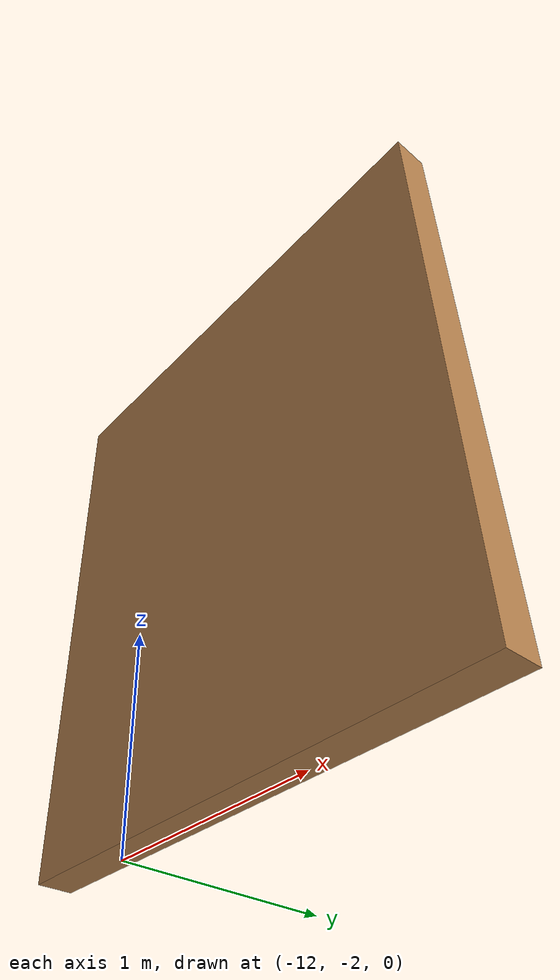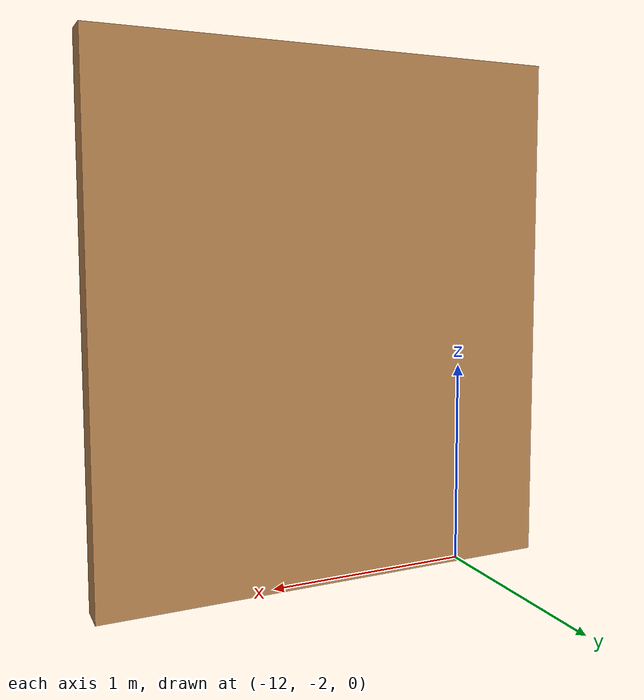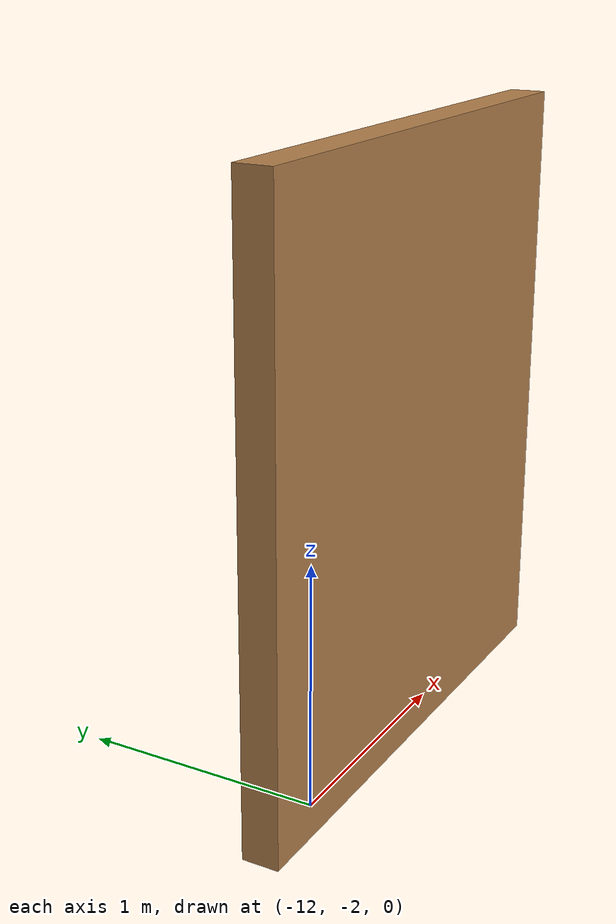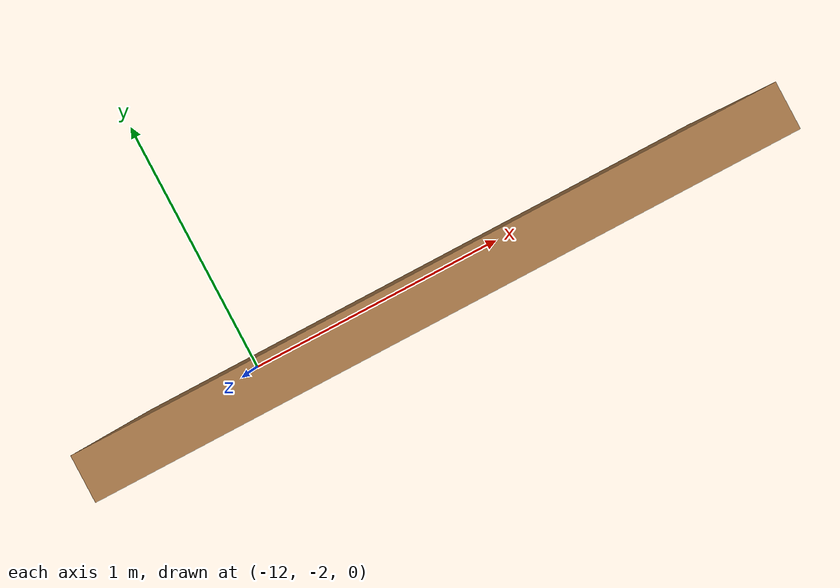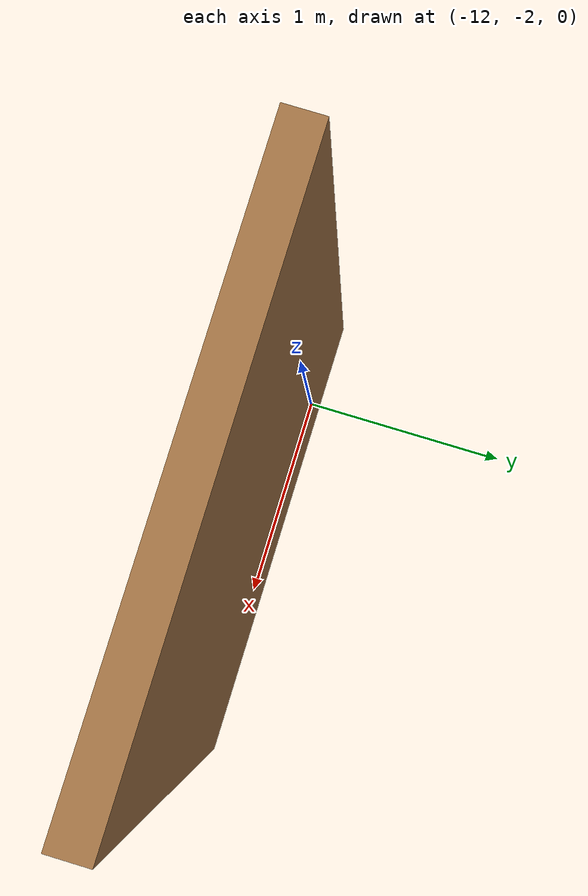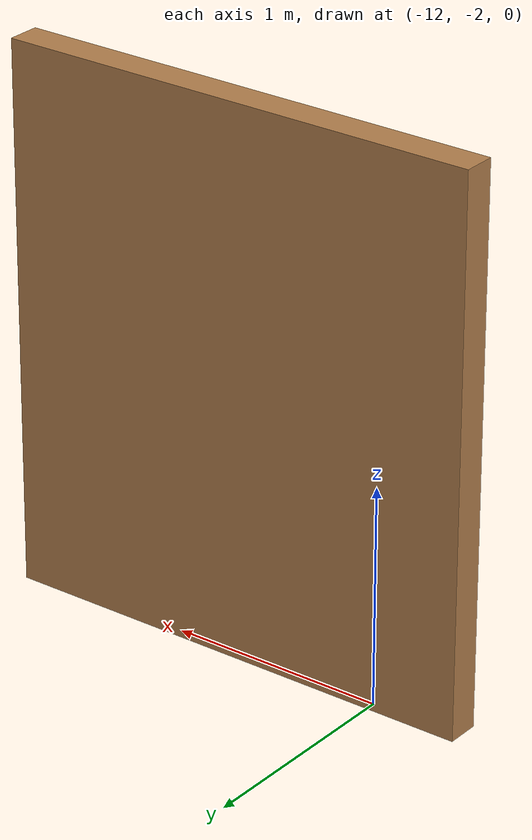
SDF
<?xml version='1.0'?>
<sdf version='1.6'>
  <model name='mybuilding2'>
    <pose frame=''>-11.3 -2.03 0 0 -0 0</pose>
    <link name='Wall_14'>
      <collision name='Wall_14_Collision'>
        <geometry>
          <box>
            <size>2.25 0.15 2.5</size>
          </box>
        </geometry>
        <pose frame=''>0 0 1.25 0 -0 0</pose>
      </collision>
      <visual name='Wall_14_Visual'>
        <pose frame=''>0 0 1.25 0 -0 0</pose>
        <geometry>
          <box>
            <size>2.25 0.15 2.5</size>
          </box>
        </geometry>
        <material>
          <script>
            <uri>file://media/materials/scripts/gazebo.material</uri>
            <name>Gazebo/Wood</name>
          </script>
          <ambient>1 1 1 1</ambient>
        </material>
      </visual>
      <pose frame=''>0 0 0 0 -0 0</pose>
    </link>
    <static>1</static>
  </model>
</sdf>
